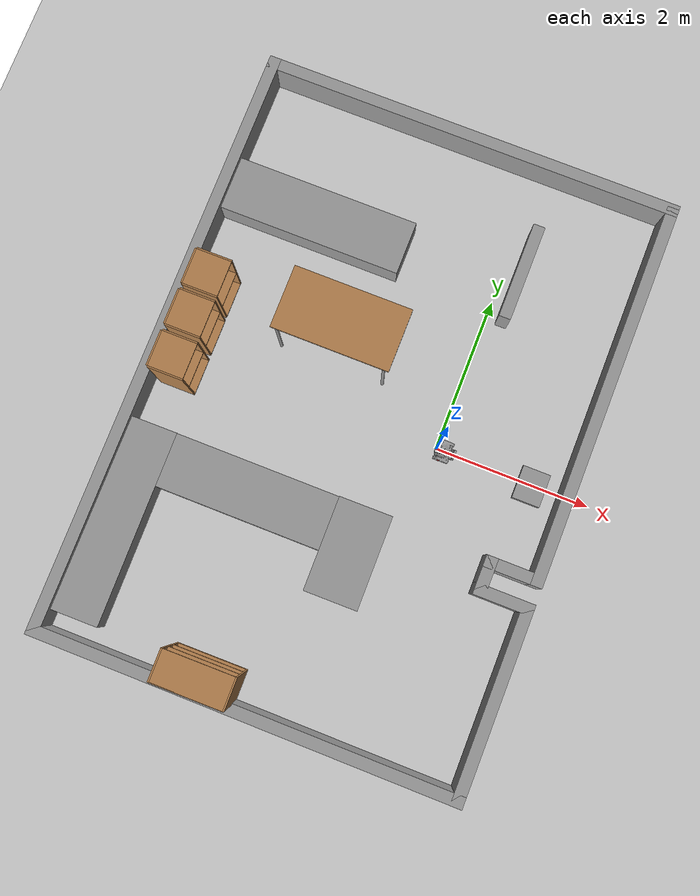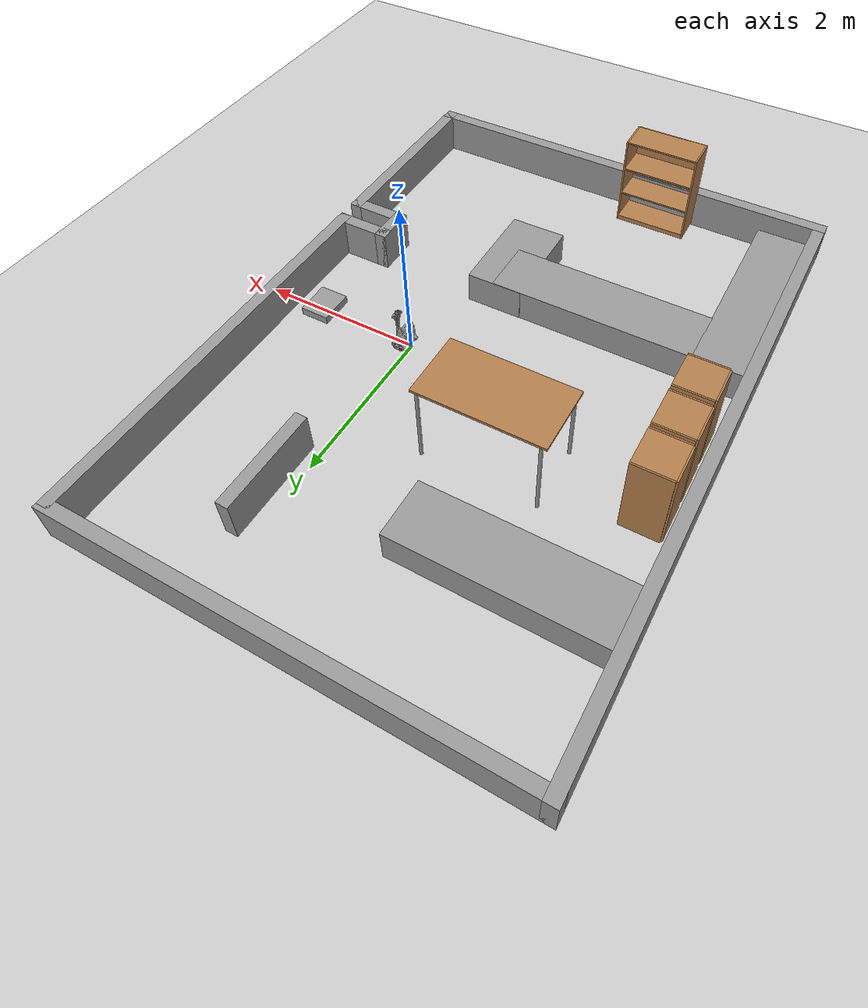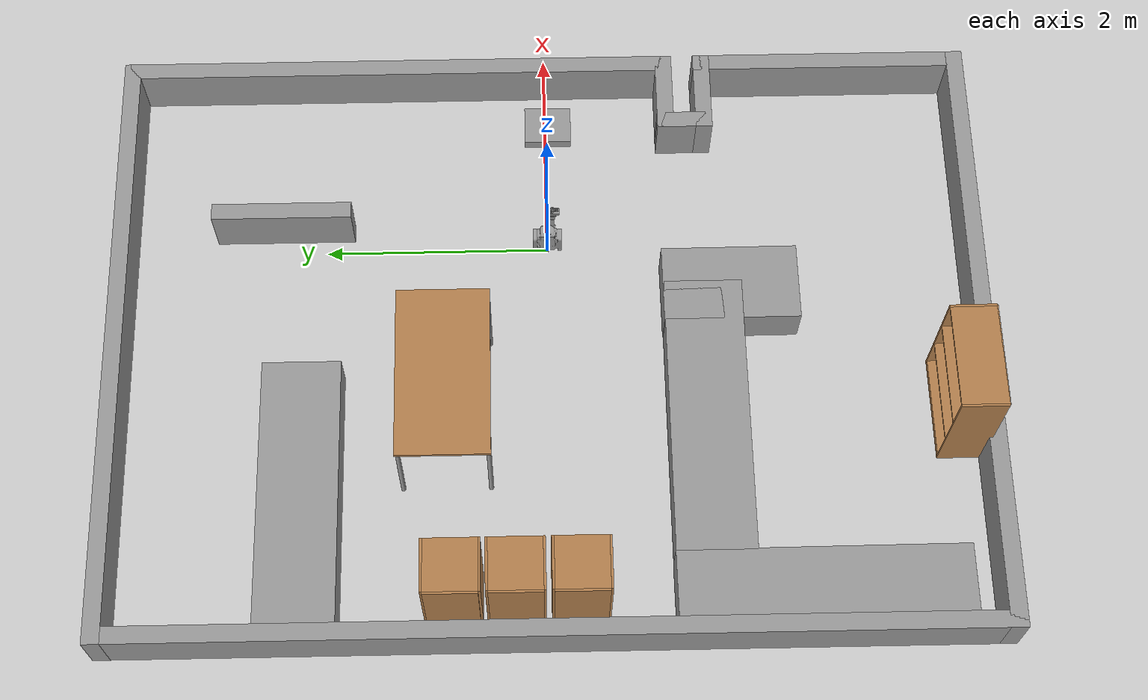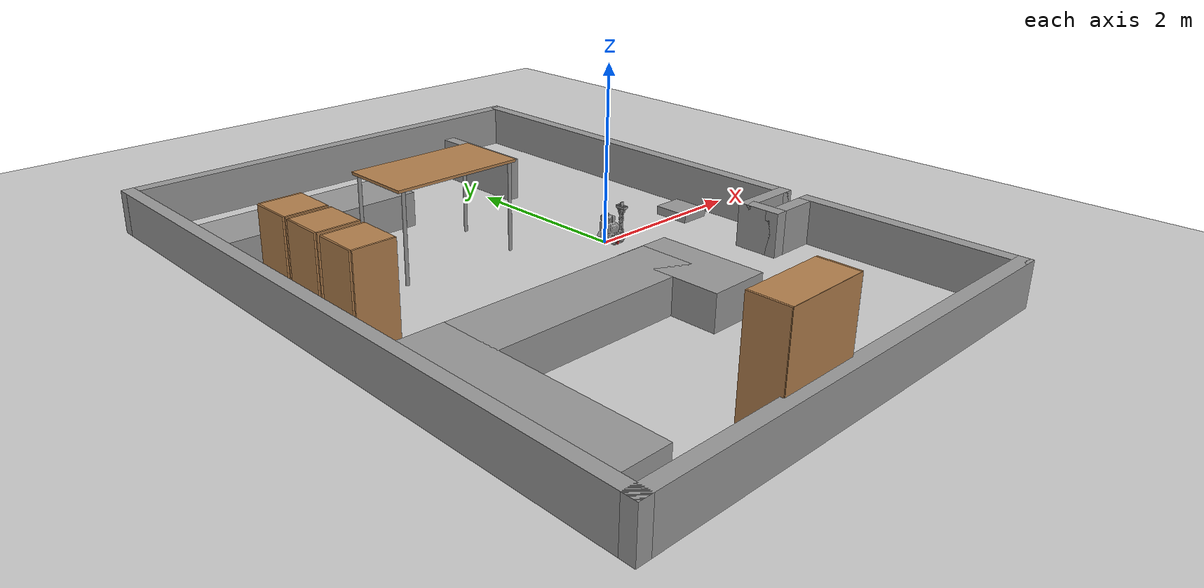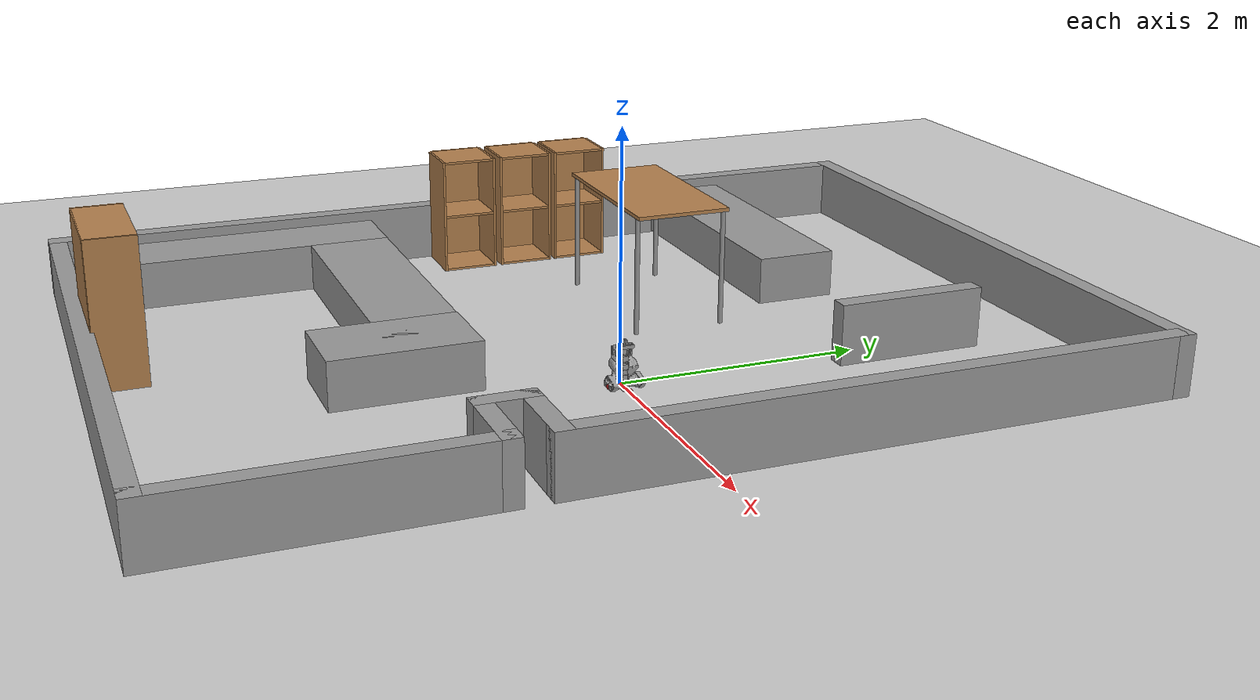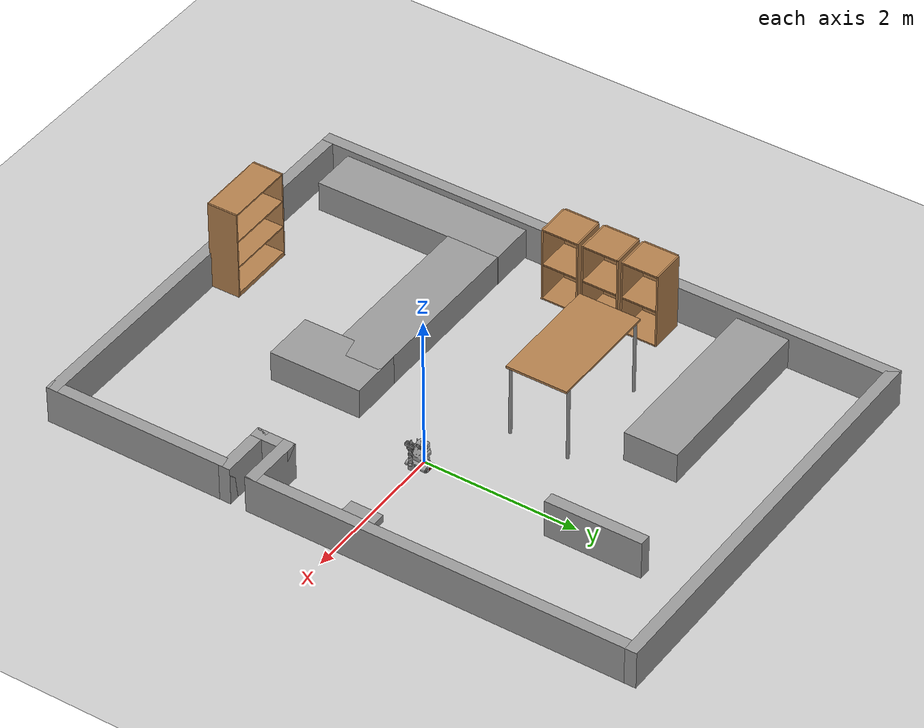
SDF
<sdf version="1.7">
 <world name="downstairs_combined">
  <model name="ground_plane">
   <static>1</static>
   <link name="link">
    <collision name="collision">
     <geometry><plane><normal>0 0 1</normal><size>100 100</size></plane></geometry>
     <surface>
      <contact><collide_bitmask>65535</collide_bitmask></contact>
      <friction><ode><mu>100</mu><mu2>50</mu2></ode></friction>
     </surface>
    </collision>
    <visual name="visual">
     <cast_shadows>0</cast_shadows>
     <geometry><plane><normal>0 0 1</normal><size>100 100</size></plane></geometry>
     <material>
      <script><uri>file://media/materials/scripts/gazebo.material</uri><name>Gazebo/Grey</name></script>
     </material>
    </visual>
   </link>
  </model>
  <model name="downstairs_building">
   <pose>-1 0 0 0 -0 0</pose>
   <link name="Wall_10">
    <collision name="Wall_10_Collision">
     <geometry><box><size>0.5 0.15 0.5</size></box></geometry>
     <pose>0 0 0.25 0 -0 0</pose>
    </collision>
    <visual name="Wall_10_Visual">
     <pose>0 0 0.25 0 -0 0</pose>
     <geometry><box><size>0.5 0.15 0.5</size></box></geometry>
     <material>
      <script><uri>file://media/materials/scripts/gazebo.material</uri><name>Gazebo/Grey</name></script>
      <ambient>1 1 1 1</ambient>
     </material>
     <meta><layer>0</layer></meta>
    </visual>
    <pose>2.075 -1.275 0 0 -0 1.5708</pose>
   </link>
   <link name="Wall_11">
    <collision name="Wall_11_Collision">
     <geometry><box><size>0.75 0.15 0.5</size></box></geometry>
     <pose>0 0 0.25 0 -0 0</pose>
    </collision>
    <visual name="Wall_11_Visual">
     <pose>0 0 0.25 0 -0 0</pose>
     <geometry><box><size>0.75 0.15 0.5</size></box></geometry>
     <material>
      <script><uri>file://media/materials/scripts/gazebo.material</uri><name>Gazebo/Grey</name></script>
      <ambient>1 1 1 1</ambient>
     </material>
     <meta><layer>0</layer></meta>
    </visual>
    <pose>2.375 -1.1 0 0 -0 0</pose>
   </link>
   <link name="Wall_12">
    <collision name="Wall_12_Collision">
     <geometry><box><size>5 0.15 0.5</size></box></geometry>
     <pose>0 0 0.25 0 -0 0</pose>
    </collision>
    <visual name="Wall_12_Visual">
     <pose>0 0 0.25 0 -0 0</pose>
     <geometry><box><size>5 0.15 0.5</size></box></geometry>
     <material>
      <script><uri>file://media/materials/scripts/gazebo.material</uri><name>Gazebo/Grey</name></script>
      <ambient>1 1 1 1</ambient>
     </material>
     <meta><layer>0</layer></meta>
    </visual>
    <pose>2.675 1.325 0 0 -0 1.5708</pose>
   </link>
   <link name="Wall_16">
    <collision name="Wall_16_Collision">
     <geometry><box><size>5.5 0.15 0.5</size></box></geometry>
     <pose>0 0 0.25 0 -0 0</pose>
    </collision>
    <visual name="Wall_16_Visual">
     <pose>0 0 0.25 0 -0 0</pose>
     <geometry><box><size>5.5 0.15 0.5</size></box></geometry>
     <material>
      <script><uri>file://media/materials/scripts/gazebo.material</uri><name>Gazebo/Grey</name></script>
      <ambient>1 1 1 1</ambient>
     </material>
     <meta><layer>0</layer></meta>
    </visual>
    <pose>0 -3.8 0 0 -0 3.14159</pose>
   </link>
   <link name="Wall_17">
    <collision name="Wall_17_Collision">
     <geometry><box><size>7.75 0.15 0.5</size></box></geometry>
     <pose>0 0 0.25 0 -0 0</pose>
    </collision>
    <visual name="Wall_17_Visual">
     <pose>0 0 0.25 0 -0 0</pose>
     <geometry><box><size>7.75 0.15 0.5</size></box></geometry>
     <material>
      <script><uri>file://media/materials/scripts/gazebo.material</uri><name>Gazebo/Grey</name></script>
      <ambient>1 1 1 1</ambient>
     </material>
     <meta><layer>0</layer></meta>
    </visual>
    <pose>-2.675 -0 0 0 -0 1.5708</pose>
   </link>
   <link name="Wall_18">
    <collision name="Wall_18_Collision">
     <geometry><box><size>5.50023 0.15 0.5</size></box></geometry>
     <pose>0 0 0.25 0 -0 0</pose>
    </collision>
    <visual name="Wall_18_Visual">
     <pose>0 0 0.25 0 -0 0</pose>
     <geometry><box><size>5.50023 0.15 0.5</size></box></geometry>
     <material>
      <script><uri>file://media/materials/scripts/gazebo.material</uri><name>Gazebo/Grey</name></script>
      <ambient>1 1 1 1</ambient>
     </material>
     <meta><layer>0</layer></meta>
    </visual>
    <pose>0 3.8 0 0 -0 0</pose>
   </link>
   <link name="Wall_20">
    <collision name="Wall_20_Collision">
     <geometry><box><size>1.25 0.15 0.5</size></box></geometry>
     <pose>0 0 0.25 0 -0 0</pose>
    </collision>
    <visual name="Wall_20_Visual">
     <pose>0 0 0.25 0 -0 0</pose>
     <geometry><box><size>1.25 0.15 0.5</size></box></geometry>
     <material>
      <script><uri>file://media/materials/scripts/gazebo.material</uri><name>Gazebo/Grey</name></script>
      <ambient>1 1 1 1</ambient>
     </material>
     <meta><layer>0</layer></meta>
    </visual>
    <pose>1.20049 2.38048 0 0 -0 -1.5708</pose>
   </link>
   <link name="Wall_4">
    <collision name="Wall_4_Collision">
     <geometry><box><size>2.5 0.15 0.5</size></box></geometry>
     <pose>0 0 0.25 0 -0 0</pose>
    </collision>
    <visual name="Wall_4_Visual">
     <pose>0 0 0.25 0 -0 0</pose>
     <geometry><box><size>2.5 0.15 0.5</size></box></geometry>
     <material>
      <script><uri>file://media/materials/scripts/gazebo.material</uri><name>Gazebo/Grey</name></script>
      <ambient>1 1 1 1</ambient>
     </material>
     <meta><layer>0</layer></meta>
    </visual>
    <pose>2.675 -2.625 0 0 -0 1.5708</pose>
   </link>
   <link name="Wall_9">
    <collision name="Wall_9_Collision">
     <geometry><box><size>0.75 0.15 0.5</size></box></geometry>
     <pose>0 0 0.25 0 -0 0</pose>
    </collision>
    <visual name="Wall_9_Visual">
     <pose>0 0 0.25 0 -0 0</pose>
     <geometry><box><size>0.75 0.15 0.5</size></box></geometry>
     <material>
      <script><uri>file://media/materials/scripts/gazebo.material</uri><name>Gazebo/Grey</name></script>
      <ambient>1 1 1 1</ambient>
     </material>
     <meta><layer>0</layer></meta>
    </visual>
    <pose>2.375 -1.45 0 0 -0 3.14159</pose>
   </link>
   <static>1</static>
  </model>
  <model name="downstairs_furniture">
   <static>1</static>
   <link name="link_0">
    <inertial>
     <mass>0.0130697</mass>
     <inertia>
      <ixx>0.000204633</ixx>
      <ixy>0</ixy>
      <ixz>0</ixz>
      <iyy>0.000147146</iyy>
      <iyz>0</iyz>
      <izz>0.000335628</izz>
     </inertia>
    </inertial>
    <pose>3.2564 0.476482 -0.035 0 -0 0</pose>
    <visual name="visual">
     <geometry><box><size>0.357335 0.424817 0.1</size></box></geometry>
     <material>
      <lighting>1</lighting>
      <script><uri>file://media/materials/scripts/gazebo.material</uri><name>Gazebo/Grey</name></script>
      <shader type="pixel"><normal_map>__default__</normal_map></shader>
      <ambient>0.3 0.3 0.3 1</ambient>
      <diffuse>0.7 0.7 0.7 1</diffuse>
      <specular>0.01 0.01 0.01 1</specular>
      <emissive>0 0 0 1</emissive>
     </material>
    </visual>
    <collision name="collision">
     <geometry><box><size>0.357335 0.424818 0.086108</size></box></geometry>
     <surface>
      <friction>
       <ode><mu>1</mu><mu2>1</mu2><fdir1>0 0 0</fdir1><slip1>0</slip1><slip2>0</slip2></ode>
       <torsional>
        <coefficient>1</coefficient>
        <patch_radius>0</patch_radius>
        <surface_radius>0</surface_radius>
        <use_patch_radius>1</use_patch_radius>
        <ode><slip>0</slip></ode>
       </torsional>
      </friction>
      <bounce><restitution_coefficient>0</restitution_coefficient><threshold>1e+06</threshold></bounce>
      <contact>
       <collide_without_contact>0</collide_without_contact>
       <collide_without_contact_bitmask>1</collide_without_contact_bitmask>
       <collide_bitmask>1</collide_bitmask>
       <ode>
        <soft_cfm>0</soft_cfm>
        <soft_erp>0.2</soft_erp>
        <kp>1e+13</kp>
        <kd>1</kd>
        <max_vel>0.01</max_vel>
        <min_depth>0</min_depth>
       </ode>
       <bullet>
        <split_impulse>1</split_impulse>
        <split_impulse_penetration_threshold>-0.01</split_impulse_penetration_threshold>
        <soft_cfm>0</soft_cfm>
        <soft_erp>0.2</soft_erp>
        <kp>1e+13</kp>
        <kd>1</kd>
       </bullet>
      </contact>
     </surface>
    </collision>
   </link>
   <link name="link_2">
    <inertial>
     <mass>0.737065</mass>
     <inertia>
      <ixx>0.0405302</ixx>
      <ixy>0</ixy>
      <ixz>0</ixz>
      <iyy>0.392236</iyy>
      <iyz>0</iyz>
      <izz>0.410149</izz>
     </inertia>
    </inertial>
    <pose>-1.34615 -1.76372 0.115 0 -0 1.57646</pose>
    <visual name="visual">
     <geometry><box><size>2.49034 0.689749 0.4</size></box></geometry>
     <material>
      <lighting>1</lighting>
      <script><uri>file://media/materials/scripts/gazebo.material</uri><name>Gazebo/Grey</name></script>
      <shader type="pixel"><normal_map>__default__</normal_map></shader>
      <ambient>0.3 0.3 0.3 1</ambient>
      <diffuse>0.7 0.7 0.7 1</diffuse>
      <specular>0.01 0.01 0.01 1</specular>
      <emissive>0 0 0 1</emissive>
     </material>
    </visual>
    <collision name="collision">
     <geometry><box><size>2.49034 0.689749 0.429081</size></box></geometry>
     <surface>
      <friction>
       <ode><mu>1</mu><mu2>1</mu2><fdir1>0 0 0</fdir1><slip1>0</slip1><slip2>0</slip2></ode>
       <torsional>
        <coefficient>1</coefficient>
        <patch_radius>0</patch_radius>
        <surface_radius>0</surface_radius>
        <use_patch_radius>1</use_patch_radius>
        <ode><slip>0</slip></ode>
       </torsional>
      </friction>
      <bounce><restitution_coefficient>0</restitution_coefficient><threshold>1e+06</threshold></bounce>
      <contact>
       <collide_without_contact>0</collide_without_contact>
       <collide_without_contact_bitmask>1</collide_without_contact_bitmask>
       <collide_bitmask>1</collide_bitmask>
       <ode>
        <soft_cfm>0</soft_cfm>
        <soft_erp>0.2</soft_erp>
        <kp>1e+13</kp>
        <kd>1</kd>
        <max_vel>0.01</max_vel>
        <min_depth>0</min_depth>
       </ode>
       <bullet>
        <split_impulse>1</split_impulse>
        <split_impulse_penetration_threshold>-0.01</split_impulse_penetration_threshold>
        <soft_cfm>0</soft_cfm>
        <soft_erp>0.2</soft_erp>
        <kp>1e+13</kp>
        <kd>1</kd>
       </bullet>
      </contact>
     </surface>
    </collision>
   </link>
   <link name="link_2_clone">
    <inertial>
     <mass>0.737065</mass>
     <inertia>
      <ixx>0.0405302</ixx>
      <ixy>0</ixy>
      <ixz>0</ixz>
      <iyy>0.392236</iyy>
      <iyz>0</iyz>
      <izz>0.410149</izz>
     </inertia>
    </inertial>
    <pose>0.232348 -0.863769 0.115 0 -0 0</pose>
    <visual name="visual">
     <geometry><box><size>2.49034 0.689749 0.4</size></box></geometry>
     <material>
      <lighting>1</lighting>
      <script><uri>file://media/materials/scripts/gazebo.material</uri><name>Gazebo/Grey</name></script>
      <shader type="pixel"><normal_map>__default__</normal_map></shader>
      <ambient>0.3 0.3 0.3 1</ambient>
      <diffuse>0.7 0.7 0.7 1</diffuse>
      <specular>0.01 0.01 0.01 1</specular>
      <emissive>0 0 0 1</emissive>
     </material>
    </visual>
    <collision name="collision">
     <geometry><box><size>2.49034 0.689749 0.429081</size></box></geometry>
     <surface>
      <friction>
       <ode><mu>1</mu><mu2>1</mu2><fdir1>0 0 0</fdir1><slip1>0</slip1><slip2>0</slip2></ode>
       <torsional>
        <coefficient>1</coefficient>
        <patch_radius>0</patch_radius>
        <surface_radius>0</surface_radius>
        <use_patch_radius>1</use_patch_radius>
        <ode><slip>0</slip></ode>
       </torsional>
      </friction>
      <bounce><restitution_coefficient>0</restitution_coefficient><threshold>1e+06</threshold></bounce>
      <contact>
       <collide_without_contact>0</collide_without_contact>
       <collide_without_contact_bitmask>1</collide_without_contact_bitmask>
       <collide_bitmask>1</collide_bitmask>
       <ode>
        <soft_cfm>0</soft_cfm>
        <soft_erp>0.2</soft_erp>
        <kp>1e+13</kp>
        <kd>1</kd>
        <max_vel>0.01</max_vel>
        <min_depth>0</min_depth>
       </ode>
       <bullet>
        <split_impulse>1</split_impulse>
        <split_impulse_penetration_threshold>-0.01</split_impulse_penetration_threshold>
        <soft_cfm>0</soft_cfm>
        <soft_erp>0.2</soft_erp>
        <kp>1e+13</kp>
        <kd>1</kd>
       </bullet>
      </contact>
     </surface>
    </collision>
   </link>
   <link name="link_2_clone_0">
    <inertial>
     <mass>0.356026</mass>
     <inertia>
      <ixx>0.0195774</ixx>
      <ixy>0</ixy>
      <ixz>0</ixz>
      <iyy>0.0483934</iyy>
      <iyz>0</iyz>
      <izz>0.0570461</izz>
     </inertia>
    </inertial>
    <pose>1.45749 -1.11252 0.115 0 -0 1.57646</pose>
    <visual name="visual">
     <geometry><box><size>1.20292 0.689749 0.4</size></box></geometry>
     <material>
      <lighting>1</lighting>
      <script><uri>file://media/materials/scripts/gazebo.material</uri><name>Gazebo/Grey</name></script>
      <shader type="pixel"><normal_map>__default__</normal_map></shader>
      <ambient>0.3 0.3 0.3 1</ambient>
      <diffuse>0.7 0.7 0.7 1</diffuse>
      <specular>0.01 0.01 0.01 1</specular>
      <emissive>0 0 0 1</emissive>
     </material>
    </visual>
    <collision name="collision">
     <geometry><box><size>1.20292 0.689749 0.429081</size></box></geometry>
     <surface>
      <friction>
       <ode><mu>1</mu><mu2>1</mu2><fdir1>0 0 0</fdir1><slip1>0</slip1><slip2>0</slip2></ode>
       <torsional>
        <coefficient>1</coefficient>
        <patch_radius>0</patch_radius>
        <surface_radius>0</surface_radius>
        <use_patch_radius>1</use_patch_radius>
        <ode><slip>0</slip></ode>
       </torsional>
      </friction>
      <bounce><restitution_coefficient>0</restitution_coefficient><threshold>1e+06</threshold></bounce>
      <contact>
       <collide_without_contact>0</collide_without_contact>
       <collide_without_contact_bitmask>1</collide_without_contact_bitmask>
       <collide_bitmask>1</collide_bitmask>
       <ode>
        <soft_cfm>0</soft_cfm>
        <soft_erp>0.2</soft_erp>
        <kp>1e+13</kp>
        <kd>1</kd>
        <max_vel>0.01</max_vel>
        <min_depth>0</min_depth>
       </ode>
       <bullet>
        <split_impulse>1</split_impulse>
        <split_impulse_penetration_threshold>-0.01</split_impulse_penetration_threshold>
        <soft_cfm>0</soft_cfm>
        <soft_erp>0.2</soft_erp>
        <kp>1e+13</kp>
        <kd>1</kd>
       </bullet>
      </contact>
     </surface>
    </collision>
   </link>
   <link name="link_2_clone_clone">
    <inertial>
     <mass>0.737065</mass>
     <inertia>
      <ixx>0.0405302</ixx>
      <ixy>0</ixy>
      <ixz>0</ixz>
      <iyy>0.392236</iyy>
      <iyz>0</iyz>
      <izz>0.410149</izz>
     </inertia>
    </inertial>
    <pose>-0.486153 2.66208 0.115 0 -0 0</pose>
    <visual name="visual">
     <geometry><box><size>2.49034 0.689749 0.4</size></box></geometry>
     <material>
      <lighting>1</lighting>
      <script><uri>file://media/materials/scripts/gazebo.material</uri><name>Gazebo/Grey</name></script>
      <shader type="pixel"><normal_map>__default__</normal_map></shader>
      <ambient>0.3 0.3 0.3 1</ambient>
      <diffuse>0.7 0.7 0.7 1</diffuse>
      <specular>0.01 0.01 0.01 1</specular>
      <emissive>0 0 0 1</emissive>
     </material>
    </visual>
    <collision name="collision">
     <geometry><box><size>2.49034 0.689749 0.429081</size></box></geometry>
     <surface>
      <friction>
       <ode><mu>1</mu><mu2>1</mu2><fdir1>0 0 0</fdir1><slip1>0</slip1><slip2>0</slip2></ode>
       <torsional>
        <coefficient>1</coefficient>
        <patch_radius>0</patch_radius>
        <surface_radius>0</surface_radius>
        <use_patch_radius>1</use_patch_radius>
        <ode><slip>0</slip></ode>
       </torsional>
      </friction>
      <bounce><restitution_coefficient>0</restitution_coefficient><threshold>1e+06</threshold></bounce>
      <contact>
       <collide_without_contact>0</collide_without_contact>
       <collide_without_contact_bitmask>1</collide_without_contact_bitmask>
       <collide_bitmask>1</collide_bitmask>
       <ode>
        <soft_cfm>0</soft_cfm>
        <soft_erp>0.2</soft_erp>
        <kp>1e+13</kp>
        <kd>1</kd>
        <max_vel>0.01</max_vel>
        <min_depth>0</min_depth>
       </ode>
       <bullet>
        <split_impulse>1</split_impulse>
        <split_impulse_penetration_threshold>-0.01</split_impulse_penetration_threshold>
        <soft_cfm>0</soft_cfm>
        <soft_erp>0.2</soft_erp>
        <kp>1e+13</kp>
        <kd>1</kd>
       </bullet>
      </contact>
     </surface>
    </collision>
   </link>
   <model name="bookshelf">
    <static>1</static>
    <link name="link">
     <inertial><mass>1</mass></inertial>
     <collision name="back">
      <pose>0 0.005 0.6 0 -0 0</pose>
      <geometry><box><size>0.9 0.01 1.2</size></box></geometry>
     </collision>
     <visual name="visual1">
      <pose>0 0.005 0.6 0 -0 0</pose>
      <geometry><box><size>0.9 0.01 1.2</size></box></geometry>
      <material>
       <script><uri>file://media/materials/scripts/gazebo.material</uri><name>Gazebo/Wood</name></script>
      </material>
     </visual>
     <collision name="left_side">
      <pose>0.45 -0.195 0.6 0 -0 0</pose>
      <geometry><box><size>0.02 0.4 1.2</size></box></geometry>
     </collision>
     <visual name="visual2">
      <pose>0.45 -0.195 0.6 0 -0 0</pose>
      <geometry><box><size>0.02 0.4 1.2</size></box></geometry>
      <material>
       <script><uri>file://media/materials/scripts/gazebo.material</uri><name>Gazebo/Wood</name></script>
      </material>
     </visual>
     <collision name="right_side">
      <pose>-0.45 -0.195 0.6 0 -0 0</pose>
      <geometry><box><size>0.02 0.4 1.2</size></box></geometry>
     </collision>
     <visual name="visual3">
      <pose>-0.45 -0.195 0.6 0 -0 0</pose>
      <geometry><box><size>0.02 0.4 1.2</size></box></geometry>
      <material>
       <script><uri>file://media/materials/scripts/gazebo.material</uri><name>Gazebo/Wood</name></script>
      </material>
     </visual>
     <collision name="bottom">
      <pose>0 -0.195 0.03 0 -0 0</pose>
      <geometry><box><size>0.88 0.4 0.06</size></box></geometry>
     </collision>
     <visual name="visual4">
      <pose>0 -0.195 0.03 0 -0 0</pose>
      <geometry><box><size>0.88 0.4 0.06</size></box></geometry>
      <material>
       <script><uri>file://media/materials/scripts/gazebo.material</uri><name>Gazebo/Wood</name></script>
      </material>
     </visual>
     <collision name="top">
      <pose>0 -0.195 1.19 0 -0 0</pose>
      <geometry><box><size>0.88 0.4 0.02</size></box></geometry>
     </collision>
     <visual name="visual5">
      <pose>0 -0.195 1.19 0 -0 0</pose>
      <geometry><box><size>0.88 0.4 0.02</size></box></geometry>
      <material>
       <script><uri>file://media/materials/scripts/gazebo.material</uri><name>Gazebo/Wood</name></script>
      </material>
     </visual>
     <collision name="low_shelf">
      <pose>0 -0.195 0.43 0 -0 0</pose>
      <geometry><box><size>0.88 0.4 0.02</size></box></geometry>
     </collision>
     <visual name="visual6">
      <pose>0 -0.195 0.43 0 -0 0</pose>
      <geometry><box><size>0.88 0.4 0.02</size></box></geometry>
      <material>
       <script><uri>file://media/materials/scripts/gazebo.material</uri><name>Gazebo/Wood</name></script>
      </material>
     </visual>
     <collision name="high_shelf">
      <pose>0 -0.195 0.8 0 -0 0</pose>
      <geometry><box><size>0.88 0.4 0.02</size></box></geometry>
     </collision>
     <visual name="visual7">
      <pose>0 -0.195 0.8 0 -0 0</pose>
      <geometry><box><size>0.88 0.4 0.02</size></box></geometry>
      <material>
       <script><uri>file://media/materials/scripts/gazebo.material</uri><name>Gazebo/Wood</name></script>
      </material>
     </visual>
    </link>
    <pose>0.373081 -3.24677 -0.085 0 0 -3.13438</pose>
   </model>
   <model name="cabinet">
    <static>1</static>
    <link name="cabinet_bottom_plate">
     <inertial>
      <pose>0 0 -1 0 -0 0</pose>
      <inertia><ixx>2.05</ixx><ixy>0</ixy><ixz>0</ixz><iyy>2.05</iyy><iyz>0</iyz><izz>2.05</izz></inertia>
      <mass>25</mass>
     </inertial>
     <collision name="cabinet_bottom_plate_geom">
      <pose>0 0 0.01 0 -0 0</pose>
      <geometry><box><size>0.45 0.45 0.02</size></box></geometry>
     </collision>
     <visual name="cabinet_bottom_plate_geom_visual">
      <pose>0 0 0.01 0 -0 0</pose>
      <geometry><box><size>0.45 0.45 0.02</size></box></geometry>
      <material>
       <script><uri>file://media/materials/scripts/gazebo.material</uri><name>Gazebo/Wood</name></script>
      </material>
     </visual>
     <collision name="cabinet_bottom_plate_geom_cabinet_back_plate">
      <pose>0.235 0 0.51 0 -0 0</pose>
      <geometry><box><size>0.02 0.45 1.02</size></box></geometry>
     </collision>
     <visual name="cabinet_bottom_plate_geom_cabinet_back_plate_visual">
      <pose>0.235 0 0.51 0 -0 0</pose>
      <geometry><box><size>0.02 0.45 1.02</size></box></geometry>
      <material>
       <script><uri>file://media/materials/scripts/gazebo.material</uri><name>Gazebo/Wood</name></script>
      </material>
     </visual>
     <collision name="cabinet_bottom_plate_geom_cabinet_left_plate">
      <pose>0 0.235 0.51 0 -0 0</pose>
      <geometry><box><size>0.45 0.02 1.02</size></box></geometry>
     </collision>
     <visual name="cabinet_bottom_plate_geom_cabinet_left_plate_visual">
      <pose>0 0.235 0.51 0 -0 0</pose>
      <geometry><box><size>0.45 0.02 1.02</size></box></geometry>
      <material>
       <script><uri>file://media/materials/scripts/gazebo.material</uri><name>Gazebo/Wood</name></script>
      </material>
     </visual>
     <collision name="cabinet_bottom_plate_geom_cabinet_middle_plate">
      <pose>0 0 0.51 0 -0 0</pose>
      <geometry><box><size>0.45 0.45 0.02</size></box></geometry>
     </collision>
     <visual name="cabinet_bottom_plate_geom_cabinet_middle_plate_visual">
      <pose>0 0 0.51 0 -0 0</pose>
      <geometry><box><size>0.45 0.45 0.02</size></box></geometry>
      <material>
       <script><uri>file://media/materials/scripts/gazebo.material</uri><name>Gazebo/Wood</name></script>
      </material>
     </visual>
     <collision name="cabinet_bottom_plate_geom_cabinet_right_plate">
      <pose>0 -0.235 0.51 0 -0 0</pose>
      <geometry><box><size>0.45 0.02 1.02</size></box></geometry>
     </collision>
     <visual name="cabinet_bottom_plate_geom_cabinet_right_plate_visual">
      <pose>0 -0.235 0.51 0 -0 0</pose>
      <geometry><box><size>0.45 0.02 1.02</size></box></geometry>
      <material>
       <script><uri>file://media/materials/scripts/gazebo.material</uri><name>Gazebo/Wood</name></script>
      </material>
     </visual>
     <collision name="cabinet_bottom_plate_geom_cabinet_top_plate">
      <pose>0 0 1.01 0 -0 0</pose>
      <geometry><box><size>0.45 0.45 0.02</size></box></geometry>
     </collision>
     <visual name="cabinet_bottom_plate_geom_cabinet_top_plate_visual">
      <pose>0 0 1.01 0 -0 0</pose>
      <geometry><box><size>0.45 0.45 0.02</size></box></geometry>
      <material>
       <script><uri>file://media/materials/scripts/gazebo.material</uri><name>Gazebo/Wood</name></script>
      </material>
     </visual>
    </link>
    <pose>-1.29183 0.279397 -0.085 0 0 -3.13986</pose>
   </model>
   <model name="cabinet_clone">
    <static>1</static>
    <link name="cabinet_bottom_plate">
     <inertial>
      <pose>0 0 -1 0 -0 0</pose>
      <inertia><ixx>2.05</ixx><ixy>0</ixy><ixz>0</ixz><iyy>2.05</iyy><iyz>0</iyz><izz>2.05</izz></inertia>
      <mass>25</mass>
     </inertial>
     <collision name="cabinet_bottom_plate_geom">
      <pose>0 0 0.01 0 -0 0</pose>
      <geometry><box><size>0.45 0.45 0.02</size></box></geometry>
     </collision>
     <visual name="cabinet_bottom_plate_geom_visual">
      <pose>0 0 0.01 0 -0 0</pose>
      <geometry><box><size>0.45 0.45 0.02</size></box></geometry>
      <material>
       <script><uri>file://media/materials/scripts/gazebo.material</uri><name>Gazebo/Wood</name></script>
      </material>
     </visual>
     <collision name="cabinet_bottom_plate_geom_cabinet_back_plate">
      <pose>0.235 0 0.51 0 -0 0</pose>
      <geometry><box><size>0.02 0.45 1.02</size></box></geometry>
     </collision>
     <visual name="cabinet_bottom_plate_geom_cabinet_back_plate_visual">
      <pose>0.235 0 0.51 0 -0 0</pose>
      <geometry><box><size>0.02 0.45 1.02</size></box></geometry>
      <material>
       <script><uri>file://media/materials/scripts/gazebo.material</uri><name>Gazebo/Wood</name></script>
      </material>
     </visual>
     <collision name="cabinet_bottom_plate_geom_cabinet_left_plate">
      <pose>0 0.235 0.51 0 -0 0</pose>
      <geometry><box><size>0.45 0.02 1.02</size></box></geometry>
     </collision>
     <visual name="cabinet_bottom_plate_geom_cabinet_left_plate_visual">
      <pose>0 0.235 0.51 0 -0 0</pose>
      <geometry><box><size>0.45 0.02 1.02</size></box></geometry>
      <material>
       <script><uri>file://media/materials/scripts/gazebo.material</uri><name>Gazebo/Wood</name></script>
      </material>
     </visual>
     <collision name="cabinet_bottom_plate_geom_cabinet_middle_plate">
      <pose>0 0 0.51 0 -0 0</pose>
      <geometry><box><size>0.45 0.45 0.02</size></box></geometry>
     </collision>
     <visual name="cabinet_bottom_plate_geom_cabinet_middle_plate_visual">
      <pose>0 0 0.51 0 -0 0</pose>
      <geometry><box><size>0.45 0.45 0.02</size></box></geometry>
      <material>
       <script><uri>file://media/materials/scripts/gazebo.material</uri><name>Gazebo/Wood</name></script>
      </material>
     </visual>
     <collision name="cabinet_bottom_plate_geom_cabinet_right_plate">
      <pose>0 -0.235 0.51 0 -0 0</pose>
      <geometry><box><size>0.45 0.02 1.02</size></box></geometry>
     </collision>
     <visual name="cabinet_bottom_plate_geom_cabinet_right_plate_visual">
      <pose>0 -0.235 0.51 0 -0 0</pose>
      <geometry><box><size>0.45 0.02 1.02</size></box></geometry>
      <material>
       <script><uri>file://media/materials/scripts/gazebo.material</uri><name>Gazebo/Wood</name></script>
      </material>
     </visual>
     <collision name="cabinet_bottom_plate_geom_cabinet_top_plate">
      <pose>0 0 1.01 0 -0 0</pose>
      <geometry><box><size>0.45 0.45 0.02</size></box></geometry>
     </collision>
     <visual name="cabinet_bottom_plate_geom_cabinet_top_plate_visual">
      <pose>0 0 1.01 0 -0 0</pose>
      <geometry><box><size>0.45 0.45 0.02</size></box></geometry>
      <material>
       <script><uri>file://media/materials/scripts/gazebo.material</uri><name>Gazebo/Wood</name></script>
      </material>
     </visual>
    </link>
    <pose>-1.29376 0.817565 -0.085 0 0 -3.13986</pose>
   </model>
   <model name="cabinet_clone_0">
    <static>1</static>
    <link name="cabinet_bottom_plate">
     <inertial>
      <pose>0 0 -1 0 -0 0</pose>
      <inertia><ixx>2.05</ixx><ixy>0</ixy><ixz>0</ixz><iyy>2.05</iyy><iyz>0</iyz><izz>2.05</izz></inertia>
      <mass>25</mass>
     </inertial>
     <collision name="cabinet_bottom_plate_geom">
      <pose>0 0 0.01 0 -0 0</pose>
      <geometry><box><size>0.45 0.45 0.02</size></box></geometry>
     </collision>
     <visual name="cabinet_bottom_plate_geom_visual">
      <pose>0 0 0.01 0 -0 0</pose>
      <geometry><box><size>0.45 0.45 0.02</size></box></geometry>
      <material>
       <script><uri>file://media/materials/scripts/gazebo.material</uri><name>Gazebo/Wood</name></script>
      </material>
     </visual>
     <collision name="cabinet_bottom_plate_geom_cabinet_back_plate">
      <pose>0.235 0 0.51 0 -0 0</pose>
      <geometry><box><size>0.02 0.45 1.02</size></box></geometry>
     </collision>
     <visual name="cabinet_bottom_plate_geom_cabinet_back_plate_visual">
      <pose>0.235 0 0.51 0 -0 0</pose>
      <geometry><box><size>0.02 0.45 1.02</size></box></geometry>
      <material>
       <script><uri>file://media/materials/scripts/gazebo.material</uri><name>Gazebo/Wood</name></script>
      </material>
     </visual>
     <collision name="cabinet_bottom_plate_geom_cabinet_left_plate">
      <pose>0 0.235 0.51 0 -0 0</pose>
      <geometry><box><size>0.45 0.02 1.02</size></box></geometry>
     </collision>
     <visual name="cabinet_bottom_plate_geom_cabinet_left_plate_visual">
      <pose>0 0.235 0.51 0 -0 0</pose>
      <geometry><box><size>0.45 0.02 1.02</size></box></geometry>
      <material>
       <script><uri>file://media/materials/scripts/gazebo.material</uri><name>Gazebo/Wood</name></script>
      </material>
     </visual>
     <collision name="cabinet_bottom_plate_geom_cabinet_middle_plate">
      <pose>0 0 0.51 0 -0 0</pose>
      <geometry><box><size>0.45 0.45 0.02</size></box></geometry>
     </collision>
     <visual name="cabinet_bottom_plate_geom_cabinet_middle_plate_visual">
      <pose>0 0 0.51 0 -0 0</pose>
      <geometry><box><size>0.45 0.45 0.02</size></box></geometry>
      <material>
       <script><uri>file://media/materials/scripts/gazebo.material</uri><name>Gazebo/Wood</name></script>
      </material>
     </visual>
     <collision name="cabinet_bottom_plate_geom_cabinet_right_plate">
      <pose>0 -0.235 0.51 0 -0 0</pose>
      <geometry><box><size>0.45 0.02 1.02</size></box></geometry>
     </collision>
     <visual name="cabinet_bottom_plate_geom_cabinet_right_plate_visual">
      <pose>0 -0.235 0.51 0 -0 0</pose>
      <geometry><box><size>0.45 0.02 1.02</size></box></geometry>
      <material>
       <script><uri>file://media/materials/scripts/gazebo.material</uri><name>Gazebo/Wood</name></script>
      </material>
     </visual>
     <collision name="cabinet_bottom_plate_geom_cabinet_top_plate">
      <pose>0 0 1.01 0 -0 0</pose>
      <geometry><box><size>0.45 0.45 0.02</size></box></geometry>
     </collision>
     <visual name="cabinet_bottom_plate_geom_cabinet_top_plate_visual">
      <pose>0 0 1.01 0 -0 0</pose>
      <geometry><box><size>0.45 0.45 0.02</size></box></geometry>
      <material>
       <script><uri>file://media/materials/scripts/gazebo.material</uri><name>Gazebo/Wood</name></script>
      </material>
     </visual>
    </link>
    <pose>-1.29487 1.34458 -0.085 0 0 -3.13986</pose>
   </model>
   <model name="table">
    <static>1</static>
    <link name="link">
     <collision name="surface">
      <pose>0 0 1 0 -0 0</pose>
      <geometry><box><size>1.5 0.8 0.03</size></box></geometry>
      <surface><friction><ode><mu>0.6</mu><mu2>0.6</mu2></ode></friction></surface>
     </collision>
     <visual name="visual1">
      <pose>0 0 1 0 -0 0</pose>
      <geometry><box><size>1.5 0.8 0.03</size></box></geometry>
      <material>
       <script><uri>file://media/materials/scripts/gazebo.material</uri><name>Gazebo/Wood</name></script>
      </material>
     </visual>
     <collision name="front_left_leg">
      <pose>0.68 0.38 0.5 0 -0 0</pose>
      <geometry><cylinder><radius>0.02</radius><length>1</length></cylinder></geometry>
     </collision>
     <visual name="front_left_leg">
      <pose>0.68 0.38 0.5 0 -0 0</pose>
      <geometry><cylinder><radius>0.02</radius><length>1</length></cylinder></geometry>
      <material>
       <script><uri>file://media/materials/scripts/gazebo.material</uri><name>Gazebo/Grey</name></script>
      </material>
     </visual>
     <collision name="front_right_leg">
      <pose>0.68 -0.38 0.5 0 -0 0</pose>
      <geometry><cylinder><radius>0.02</radius><length>1</length></cylinder></geometry>
     </collision>
     <visual name="front_right_leg">
      <pose>0.68 -0.38 0.5 0 -0 0</pose>
      <geometry><cylinder><radius>0.02</radius><length>1</length></cylinder></geometry>
      <material>
       <script><uri>file://media/materials/scripts/gazebo.material</uri><name>Gazebo/Grey</name></script>
      </material>
     </visual>
     <collision name="back_right_leg">
      <pose>-0.68 -0.38 0.5 0 -0 0</pose>
      <geometry><cylinder><radius>0.02</radius><length>1</length></cylinder></geometry>
     </collision>
     <visual name="back_right_leg">
      <pose>-0.68 -0.38 0.5 0 -0 0</pose>
      <geometry><cylinder><radius>0.02</radius><length>1</length></cylinder></geometry>
      <material>
       <script><uri>file://media/materials/scripts/gazebo.material</uri><name>Gazebo/Grey</name></script>
      </material>
     </visual>
     <collision name="back_left_leg">
      <pose>-0.68 0.38 0.5 0 -0 0</pose>
      <geometry><cylinder><radius>0.02</radius><length>1</length></cylinder></geometry>
     </collision>
     <visual name="back_left_leg">
      <pose>-0.68 0.38 0.5 0 -0 0</pose>
      <geometry><cylinder><radius>0.02</radius><length>1</length></cylinder></geometry>
      <material>
       <script><uri>file://media/materials/scripts/gazebo.material</uri><name>Gazebo/Grey</name></script>
      </material>
     </visual>
    </link>
    <pose>0.393462 1.40667 -0.085 0 -0 0</pose>
   </model>
   <static>0</static>
   <pose>-2 -0.5 0.1 0 -0 0</pose>
  </model>
  <gravity>0 0 -9.8</gravity>
  <scene><ambient>0.8 0.8 0.8 1</ambient><background>1 1 1 1</background><shadows>0</shadows></scene>
  <light name="sun" type="directional">
   <cast_shadows>0</cast_shadows>
   <pose>0 0 10 0 -0 0</pose>
   <diffuse>1 1 1 1</diffuse>
   <specular>0.5 0.5 0.5 1</specular>
   <attenuation>
    <range>1000</range>
    <constant>0.9</constant>
    <linear>0.01</linear>
    <quadratic>0.001</quadratic>
   </attenuation>
   <direction>-0.5 0.1 -0.9</direction>
   <spot><inner_angle>0</inner_angle><outer_angle>0</outer_angle><falloff>0</falloff></spot>
  </light>
  <magnetic_field>6e-06 2.3e-05 -4.2e-05</magnetic_field>
  <atmosphere type="adiabatic"/>
  <physics type="ode">
   <max_step_size>0.001</max_step_size>
   <real_time_factor>1</real_time_factor>
   <real_time_update_rate>1000</real_time_update_rate>
  </physics>
  <audio><device>default</device></audio>
  <spherical_coordinates>
   <surface_model>EARTH_WGS84</surface_model>
   <latitude_deg>0</latitude_deg>
   <longitude_deg>0</longitude_deg>
   <elevation>0</elevation>
   <heading_deg>0</heading_deg>
  </spherical_coordinates>
  <model name="my_bot">
   <link name="base_link">
    <inertial>
     <pose>0.07311 -0.000796 0.105504 0 -0 0</pose>
     <mass>3.21303</mass>
     <inertia>
      <ixx>0.021114</ixx>
      <ixy>0.000669685</ixy>
      <ixz>0.00161068</ixz>
      <iyy>0.0256762</iyy>
      <iyz>-8.95676e-05</iyz>
      <izz>0.0289332</izz>
     </inertia>
    </inertial>
    <collision name="base_link_fixed_joint_lump__body_link_collision">
     <geometry><mesh><scale>1 1 1</scale><uri>model://wilson/collision_meshes/body_link.STL</uri></mesh></geometry>
    </collision>
    <collision name="base_link_fixed_joint_lump__camera_link_collision_1">
     <pose>0.10065 0.000164 0.24572 0 -0 0</pose>
     <geometry>
      <mesh><scale>1 1 1</scale><uri>model://wilson/collision_meshes/camera_link.STL</uri></mesh>
     </geometry>
    </collision>
    <collision name="base_link_fixed_joint_lump__depth_camera_link_collision_2">
     <pose>0.07765 0.038164 0.24572 0 -0 0</pose>
     <geometry>
      <mesh><scale>1 1 1</scale><uri>model://wilson/collision_meshes/depth_camera_link.STL</uri></mesh>
     </geometry>
    </collision>
    <collision name="base_link_fixed_joint_lump__front_caster_wheel_collision_3">
     <pose>0.21 0 -0.01 0 -0 0</pose>
     <geometry><sphere><radius>0.018</radius></sphere></geometry>
     <surface><friction><ode><mu>0.001</mu><mu2>0.001</mu2></ode></friction></surface>
    </collision>
    <collision name="base_link_fixed_joint_lump__laser_frame_collision_4">
     <pose>0.028815 0.000261 0.30272 0 -0 0</pose>
     <geometry>
      <mesh><scale>1 1 1</scale><uri>model://wilson/collision_meshes/laser_frame.STL</uri></mesh>
     </geometry>
    </collision>
    <collision name="base_link_fixed_joint_lump__rear_caster_wheel_collision_5">
     <pose>0 0 -0.01 0 -0 0</pose>
     <geometry><sphere><radius>0.018</radius></sphere></geometry>
     <surface><friction><ode><mu>0.001</mu><mu2>0.001</mu2></ode></friction></surface>
    </collision>
    <visual name="base_link_fixed_joint_lump__body_link_visual">
     <geometry><mesh><scale>1 1 1</scale><uri>model://wilson/meshes/body_link.STL</uri></mesh></geometry>
     <material>
      <script><name>Gazebo/Grey</name><uri>file://media/materials/scripts/gazebo.material</uri></script>
     </material>
    </visual>
    <visual name="base_link_fixed_joint_lump__camera_link_visual_1">
     <pose>0.10065 0.000164 0.24572 0 -0 0</pose>
     <geometry><mesh><scale>1 1 1</scale><uri>model://wilson/meshes/camera_link.STL</uri></mesh></geometry>
     <material>
      <script><name>Gazebo/Grey</name><uri>file://media/materials/scripts/gazebo.material</uri></script>
     </material>
    </visual>
    <visual name="base_link_fixed_joint_lump__depth_camera_link_visual_2">
     <pose>0.07765 0.038164 0.24572 0 -0 0</pose>
     <geometry><mesh><scale>1 1 1</scale><uri>model://wilson/meshes/depth_camera_link.STL</uri></mesh></geometry>
     <material>
      <script><name>Gazebo/Grey</name><uri>file://media/materials/scripts/gazebo.material</uri></script>
     </material>
    </visual>
    <visual name="base_link_fixed_joint_lump__front_caster_wheel_visual_3">
     <pose>0.21 0 -0.01 0 -0 0</pose>
     <geometry><sphere><radius>0.018</radius></sphere></geometry>
     <material>
      <script><name>Gazebo/Red</name><uri>file://media/materials/scripts/gazebo.material</uri></script>
     </material>
    </visual>
    <visual name="base_link_fixed_joint_lump__laser_frame_visual_4">
     <pose>0.028815 0.000261 0.30272 0 -0 0</pose>
     <geometry><mesh><scale>1 1 1</scale><uri>model://wilson/meshes/laser_frame.STL</uri></mesh></geometry>
     <material>
      <script><name>Gazebo/Grey</name><uri>file://media/materials/scripts/gazebo.material</uri></script>
     </material>
    </visual>
    <visual name="base_link_fixed_joint_lump__rear_caster_wheel_visual_5">
     <pose>0 0 -0.01 0 -0 0</pose>
     <geometry><sphere><radius>0.018</radius></sphere></geometry>
     <material>
      <script><name>Gazebo/Red</name><uri>file://media/materials/scripts/gazebo.material</uri></script>
     </material>
    </visual>
    <sensor name="rgb_camera" type="camera">
     <visualize>1</visualize>
     <update_rate>20</update_rate>
     <camera>
      <horizontal_fov>1.089</horizontal_fov>
      <image><format>R8G8B8</format><width>640</width><height>480</height></image>
      <clip><near>0.4</near><far>8</far></clip>
     </camera>
     <plugin name="camera_controller" filename="libgazebo_ros_camera.so">
      <frame_name>camera_link_optical</frame_name>
     </plugin>
     <pose>-0.14935 0.000164 0.24572 0 -0 0</pose>
    </sensor>
    <sensor name="depth_camera" type="depth">
     <visualize>1</visualize>
     <update_rate>20</update_rate>
     <camera>
      <horizontal_fov>1.089</horizontal_fov>
      <image><format>B8G8R8</format><width>640</width><height>480</height></image>
      <clip><near>0.5</near><far>4</far></clip>
     </camera>
     <plugin name="depth_camera_controller" filename="libgazebo_ros_camera.so">
      <frame_name>depth_camera_link_optical</frame_name>
      <mindepth>0.5</mindepth>
      <maxdepth>4.0</maxdepth>
     </plugin>
     <pose>-0.17235 0.038164 0.24572 0 -0 0</pose>
    </sensor>
    <sensor name="laser" type="ray">
     <visualize>0</visualize>
     <update_rate>10</update_rate>
     <ray>
      <scan>
       <horizontal>
        <samples>360</samples>
        <min_angle>-3.14</min_angle>
        <max_angle>3.14</max_angle>
        <resolution>1</resolution>
       </horizontal>
       <vertical><samples>1</samples><min_angle>0</min_angle><max_angle>0</max_angle></vertical>
      </scan>
      <range><min>0.3</min><max>12</max></range>
     </ray>
     <plugin name="laser_controller" filename="libgazebo_ros_ray_sensor.so">
      <ros><argument>~/out:=scan</argument></ros>
      <output_type>sensor_msgs/LaserScan</output_type>
      <frame_name>laser_frame</frame_name>
     </plugin>
     <pose>0.028815 0.000261 0.30272 0 -0 0</pose>
    </sensor>
   </link>
   <joint name="joint_1" type="revolute">
    <pose relative_to="base_link">0.20284 -0.0445 0.055968 0 -0 0</pose>
    <parent>base_link</parent>
    <child>link_1</child>
    <axis>
     <xyz>0 0 1</xyz>
     <limit><lower>-1.5708</lower><upper>1.309</upper><effort>100</effort><velocity>1</velocity></limit>
     <dynamics><spring_reference>0</spring_reference><spring_stiffness>0</spring_stiffness></dynamics>
    </axis>
   </joint>
   <link name="link_1">
    <pose relative_to="joint_1">0 0 0 0 -0 0</pose>
    <inertial>
     <mass>0.001</mass>
     <inertia>
      <ixx>0.001</ixx>
      <ixy>0.001</ixy>
      <ixz>0.001</ixz>
      <iyy>0.001</iyy>
      <iyz>0.001</iyz>
      <izz>0.001</izz>
     </inertia>
    </inertial>
    <collision name="link_1_collision">
     <geometry><mesh><scale>1 1 1</scale><uri>model://wilson/collision_meshes/link_1.STL</uri></mesh></geometry>
    </collision>
    <visual name="link_1_visual">
     <geometry><mesh><scale>1 1 1</scale><uri>model://wilson/meshes/link_1.STL</uri></mesh></geometry>
     <material>
      <script><name>Gazebo/Grey</name><uri>file://media/materials/scripts/gazebo.material</uri></script>
     </material>
    </visual>
   </link>
   <joint name="joint_2" type="revolute">
    <pose relative_to="link_1">0 -0.0002 0.041 -1.57079 -1.57079 -3.14159</pose>
    <parent>link_1</parent>
    <child>link_2</child>
    <axis>
     <xyz>0 0 1</xyz>
     <limit><lower>-1.7453</lower><upper>1.7453</upper><effort>100</effort><velocity>1</velocity></limit>
     <dynamics><spring_reference>0</spring_reference><spring_stiffness>0</spring_stiffness></dynamics>
    </axis>
   </joint>
   <link name="link_2">
    <pose relative_to="joint_2">0 0 0 0 -0 0</pose>
    <inertial>
     <pose>0.052 0 -4.9e-05 0 -0 0</pose>
     <mass>0.001</mass>
     <inertia>
      <ixx>1.8027e-05</ixx>
      <ixy>-5.0835e-12</ixy>
      <ixz>-3.4406e-22</ixz>
      <iyy>2.6081e-05</iyy>
      <iyz>7.6203e-20</iyz>
      <izz>1.3913e-05</izz>
     </inertia>
    </inertial>
    <collision name="link_2_collision">
     <geometry><mesh><scale>1 1 1</scale><uri>model://wilson/collision_meshes/link_2.STL</uri></mesh></geometry>
    </collision>
    <visual name="link_2_visual">
     <geometry><mesh><scale>1 1 1</scale><uri>model://wilson/meshes/link_2.STL</uri></mesh></geometry>
     <material>
      <script><name>Gazebo/Grey</name><uri>file://media/materials/scripts/gazebo.material</uri></script>
     </material>
    </visual>
   </link>
   <joint name="joint_3" type="revolute">
    <pose relative_to="link_2">0.10355 0 0.00025 0 -0 0</pose>
    <parent>link_2</parent>
    <child>link_3</child>
    <axis>
     <xyz>0 0 1</xyz>
     <limit><lower>-2.1817</lower><upper>2.1817</upper><effort>100</effort><velocity>1</velocity></limit>
     <dynamics><spring_reference>0</spring_reference><spring_stiffness>0</spring_stiffness></dynamics>
    </axis>
   </joint>
   <link name="link_3">
    <pose relative_to="joint_3">0 0 0 0 -0 0</pose>
    <inertial>
     <pose>0.048456 0 0.000164 0 -0 0</pose>
     <mass>0.001</mass>
     <inertia>
      <ixx>1.0479e-05</ixx>
      <ixy>-2.5418e-12</ixy>
      <ixz>5.8294e-08</ixz>
      <iyy>1.4519e-05</iyy>
      <iyz>-7.3801e-13</iyz>
      <izz>6.8191e-06</izz>
     </inertia>
    </inertial>
    <collision name="link_3_collision">
     <geometry><mesh><scale>1 1 1</scale><uri>model://wilson/collision_meshes/link_3.STL</uri></mesh></geometry>
    </collision>
    <visual name="link_3_visual">
     <geometry><mesh><scale>1 1 1</scale><uri>model://wilson/meshes/link_3.STL</uri></mesh></geometry>
     <material>
      <script><name>Gazebo/Grey</name><uri>file://media/materials/scripts/gazebo.material</uri></script>
     </material>
    </visual>
   </link>
   <joint name="joint_4" type="revolute">
    <pose relative_to="link_3">0.0639 0 0.0005 0 -0 0</pose>
    <parent>link_3</parent>
    <child>link_4</child>
    <axis>
     <xyz>0 0 1</xyz>
     <limit><lower>-2.0944</lower><upper>2.0944</upper><effort>100</effort><velocity>1</velocity></limit>
     <dynamics><spring_reference>0</spring_reference><spring_stiffness>0</spring_stiffness></dynamics>
    </axis>
   </joint>
   <link name="link_4">
    <pose relative_to="joint_4">0 0 0 0 -0 0</pose>
    <inertial>
     <pose>0.08473 -0.000207 0.000305 0 -0 0</pose>
     <mass>0.0011</mass>
     <inertia>
      <ixx>0.000189246</ixx>
      <ixy>-6.30887e-09</ixy>
      <ixz>2.2288e-06</ixz>
      <iyy>0.000168366</iyy>
      <iyz>8.42488e-09</iyz>
      <izz>7.41361e-05</izz>
     </inertia>
    </inertial>
    <collision name="link_4_collision">
     <geometry><mesh><scale>1 1 1</scale><uri>model://wilson/collision_meshes/link_4.STL</uri></mesh></geometry>
    </collision>
    <collision name="link_4_fixed_joint_lump__gripper_base_collision_1">
     <pose>0.077347 -0.000237 0.00025 0 -0 0</pose>
     <geometry>
      <mesh><scale>1 1 1</scale><uri>model://wilson/collision_meshes/gripper_base.STL</uri></mesh>
     </geometry>
    </collision>
    <visual name="link_4_visual">
     <geometry><mesh><scale>1 1 1</scale><uri>model://wilson/meshes/link_4.STL</uri></mesh></geometry>
     <material>
      <script><name>Gazebo/Grey</name><uri>file://media/materials/scripts/gazebo.material</uri></script>
     </material>
    </visual>
    <visual name="link_4_fixed_joint_lump__gripper_base_visual_1">
     <pose>0.077347 -0.000237 0.00025 0 -0 0</pose>
     <geometry><mesh><scale>1 1 1</scale><uri>model://wilson/meshes/gripper_base.STL</uri></mesh></geometry>
     <material>
      <script><name>Gazebo/Grey</name><uri>file://media/materials/scripts/gazebo.material</uri></script>
     </material>
    </visual>
   </link>
   <joint name="end_effector_roll_joint" type="revolute">
    <pose relative_to="link_4">0.122347 -0.000237 0.00025 0 -0 0</pose>
    <parent>link_4</parent>
    <child>end_effector_roll</child>
    <axis>
     <xyz>1 0 0</xyz>
     <limit><lower>-3.14</lower><upper>3.14</upper><effort>0</effort><velocity>1</velocity></limit>
     <dynamics><spring_reference>0</spring_reference><spring_stiffness>0</spring_stiffness></dynamics>
    </axis>
   </joint>
   <link name="end_effector_roll">
    <pose relative_to="end_effector_roll_joint">0 0 0 0 -0 0</pose>
    <inertial>
     <mass>0.001</mass>
     <inertia><ixx>1e-06</ixx><ixy>0</ixy><ixz>0</ixz><iyy>1e-06</iyy><iyz>0</iyz><izz>1e-06</izz></inertia>
    </inertial>
    <visual name="end_effector_roll_visual">
     <geometry><box><size>0.01 0.01 0.01</size></box></geometry>
     <material>
      <script><name>Gazebo/Green</name><uri>file://media/materials/scripts/gazebo.material</uri></script>
     </material>
    </visual>
   </link>
   <joint name="end_effector_yaw_joint" type="revolute">
    <pose relative_to="end_effector_roll">0 0 0 0 -0 0</pose>
    <parent>end_effector_roll</parent>
    <child>end_effector_yaw</child>
    <axis>
     <xyz>0 0 1</xyz>
     <limit><lower>-3.14</lower><upper>3.14</upper><effort>0</effort><velocity>1</velocity></limit>
     <dynamics><spring_reference>0</spring_reference><spring_stiffness>0</spring_stiffness></dynamics>
    </axis>
   </joint>
   <link name="end_effector_yaw">
    <pose relative_to="end_effector_yaw_joint">0 0 0 0 -0 0</pose>
    <inertial>
     <mass>0.002</mass>
     <inertia><ixx>2e-06</ixx><ixy>0</ixy><ixz>0</ixz><iyy>2e-06</iyy><iyz>0</iyz><izz>2e-06</izz></inertia>
    </inertial>
    <visual name="end_effector_yaw_visual">
     <geometry><box><size>0.01 0.01 0.01</size></box></geometry>
     <material>
      <script><name>Gazebo/Green</name><uri>file://media/materials/scripts/gazebo.material</uri></script>
     </material>
    </visual>
    <visual name="end_effector_yaw_fixed_joint_lump__end_effector_frame_visual_1">
     <geometry><box><size>0.01 0.01 0.01</size></box></geometry>
     <material>
      <script><name>Gazebo/Green</name><uri>file://media/materials/scripts/gazebo.material</uri></script>
     </material>
    </visual>
   </link>
   <joint name="gripper_left_finger_joint" type="prismatic">
    <pose relative_to="link_4">0.104547 -0.000237 0.00025 0 -0 0</pose>
    <parent>link_4</parent>
    <child>gripper_left_finger</child>
    <axis>
     <xyz>0 0 1</xyz>
     <limit><lower>-0.001</lower><upper>0.05</upper><effort>0</effort><velocity>0</velocity></limit>
     <dynamics><spring_reference>0</spring_reference><spring_stiffness>0</spring_stiffness></dynamics>
    </axis>
   </joint>
   <link name="gripper_left_finger">
    <pose relative_to="gripper_left_finger_joint">0 0 0 0 -0 0</pose>
    <inertial>
     <pose>0.013473 0.002047 0.001721 0 -0 0</pose>
     <mass>0.001</mass>
     <inertia>
      <ixx>6.2762e-06</ixx>
      <ixy>5.3005e-07</ixy>
      <ixz>-5.6448e-07</ixz>
      <iyy>4.6087e-06</iyy>
      <iyz>9.4001e-07</iyz>
      <izz>6.0257e-06</izz>
     </inertia>
    </inertial>
    <collision name="gripper_left_finger_collision">
     <geometry>
      <mesh><scale>1 1 1</scale><uri>model://wilson/collision_meshes/gripper_left_finger.STL</uri></mesh>
     </geometry>
    </collision>
    <visual name="gripper_left_finger_visual">
     <geometry><mesh><scale>1 1 1</scale><uri>model://wilson/meshes/gripper_left_finger.STL</uri></mesh></geometry>
     <material>
      <script><name>Gazebo/Grey</name><uri>file://media/materials/scripts/gazebo.material</uri></script>
     </material>
    </visual>
   </link>
   <joint name="gripper_right_finger_joint" type="prismatic">
    <pose relative_to="link_4">0.104547 -0.000237 0.00025 0 -0 0</pose>
    <parent>link_4</parent>
    <child>gripper_right_finger</child>
    <axis>
     <xyz>0 0 1</xyz>
     <limit><lower>-0.05</lower><upper>0.001</upper><effort>0</effort><velocity>0</velocity></limit>
     <dynamics><spring_reference>0</spring_reference><spring_stiffness>0</spring_stiffness></dynamics>
    </axis>
   </joint>
   <link name="gripper_right_finger">
    <pose relative_to="gripper_right_finger_joint">0 0 0 0 -0 0</pose>
    <inertial>
     <pose>0.013473 -0.002047 -0.001721 0 -0 0</pose>
     <mass>0.001</mass>
     <inertia>
      <ixx>6.2762e-06</ixx>
      <ixy>-5.3005e-07</ixy>
      <ixz>5.6448e-07</ixz>
      <iyy>4.6087e-06</iyy>
      <iyz>9.4001e-07</iyz>
      <izz>6.0257e-06</izz>
     </inertia>
    </inertial>
    <collision name="gripper_right_finger_collision">
     <geometry>
      <mesh><scale>1 1 1</scale><uri>model://wilson/collision_meshes/gripper_right_finger.STL</uri></mesh>
     </geometry>
    </collision>
    <visual name="gripper_right_finger_visual">
     <geometry>
      <mesh><scale>1 1 1</scale><uri>model://wilson/meshes/gripper_right_finger.STL</uri></mesh>
     </geometry>
     <material>
      <script><name>Gazebo/Grey</name><uri>file://media/materials/scripts/gazebo.material</uri></script>
     </material>
    </visual>
   </link>
   <joint name="left_wheel_joint" type="revolute">
    <pose relative_to="base_link">0.075 0.1175 -0.01 -1.5708 0 0</pose>
    <parent>base_link</parent>
    <child>left_wheel</child>
    <axis>
     <xyz>0 0 1</xyz>
     <limit><lower>-1e+16</lower><upper>1e+16</upper></limit>
     <dynamics><spring_reference>0</spring_reference><spring_stiffness>0</spring_stiffness></dynamics>
    </axis>
   </joint>
   <link name="left_wheel">
    <pose relative_to="left_wheel_joint">0 0 0 0 -0 0</pose>
    <inertial>
     <mass>0.1</mass>
     <inertia>
      <ixx>1.56e-05</ixx>
      <ixy>0</ixy>
      <ixz>0</ixz>
      <iyy>1.56e-05</iyy>
      <iyz>0</iyz>
      <izz>1.62e-05</izz>
     </inertia>
    </inertial>
    <collision name="left_wheel_collision">
     <geometry><cylinder><length>0.03</length><radius>0.018</radius></cylinder></geometry>
    </collision>
    <visual name="left_wheel_visual">
     <geometry><cylinder><length>0.03</length><radius>0.018</radius></cylinder></geometry>
     <material>
      <script><name>Gazebo/Red</name><uri>file://media/materials/scripts/gazebo.material</uri></script>
     </material>
    </visual>
   </link>
   <joint name="right_wheel_joint" type="revolute">
    <pose relative_to="base_link">0.075 -0.1175 -0.01 1.5708 -0 0</pose>
    <parent>base_link</parent>
    <child>right_wheel</child>
    <axis>
     <xyz>0 0 -1</xyz>
     <limit><lower>-1e+16</lower><upper>1e+16</upper></limit>
     <dynamics><spring_reference>0</spring_reference><spring_stiffness>0</spring_stiffness></dynamics>
    </axis>
   </joint>
   <link name="right_wheel">
    <pose relative_to="right_wheel_joint">0 0 0 0 -0 0</pose>
    <inertial>
     <mass>0.1</mass>
     <inertia>
      <ixx>1.56e-05</ixx>
      <ixy>0</ixy>
      <ixz>0</ixz>
      <iyy>1.56e-05</iyy>
      <iyz>0</iyz>
      <izz>1.62e-05</izz>
     </inertia>
    </inertial>
    <collision name="right_wheel_collision">
     <geometry><cylinder><length>0.03</length><radius>0.018</radius></cylinder></geometry>
    </collision>
    <visual name="right_wheel_visual">
     <geometry><cylinder><length>0.03</length><radius>0.018</radius></cylinder></geometry>
     <material>
      <script><name>Gazebo/Red</name><uri>file://media/materials/scripts/gazebo.material</uri></script>
     </material>
    </visual>
   </link>
   <static>0</static>
   <plugin name="gazebo_ros2_control" filename="libgazebo_ros2_control.so">
    <parameters>/home/trace/wilson/install/wilson/share/wilson/config/gazebo_controller_manager.yaml</parameters>
   </plugin>
   <pose>0.000184 4.9e-05 0.028 -9e-06 -0 0.000609</pose>
  </model>
 </world>
</sdf>
